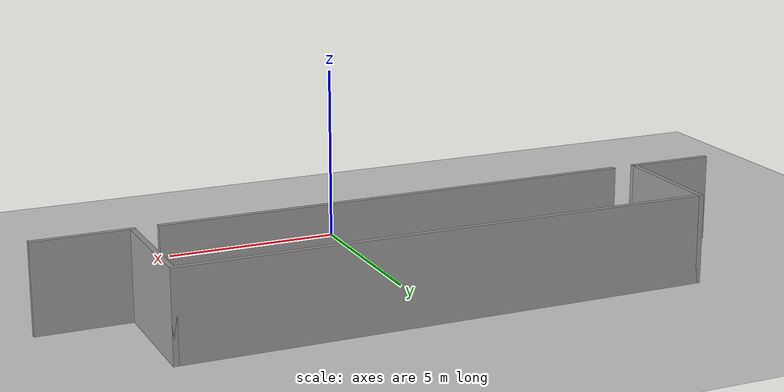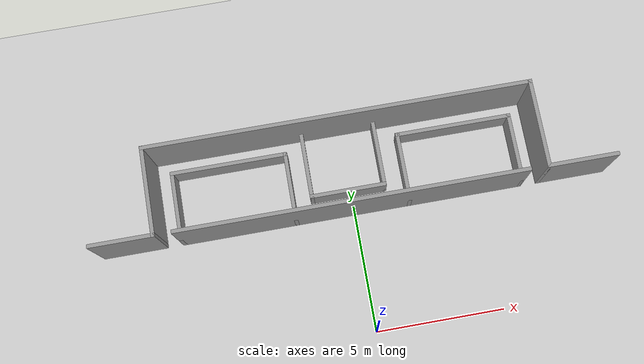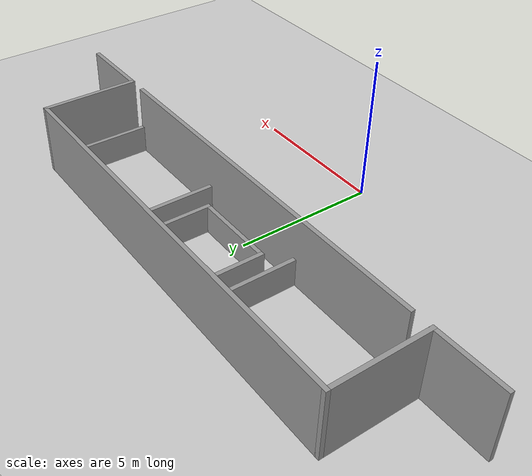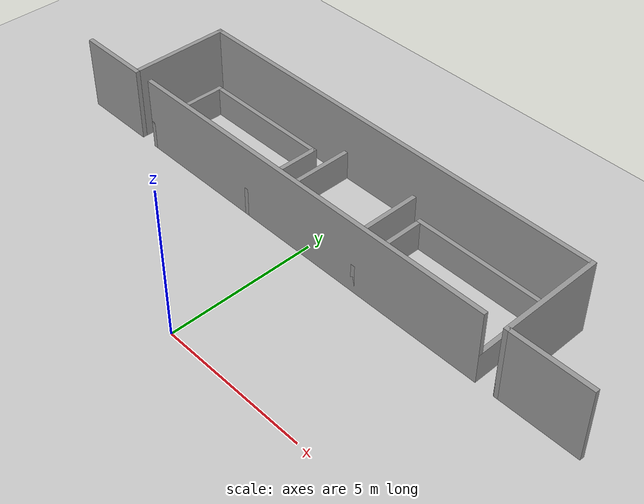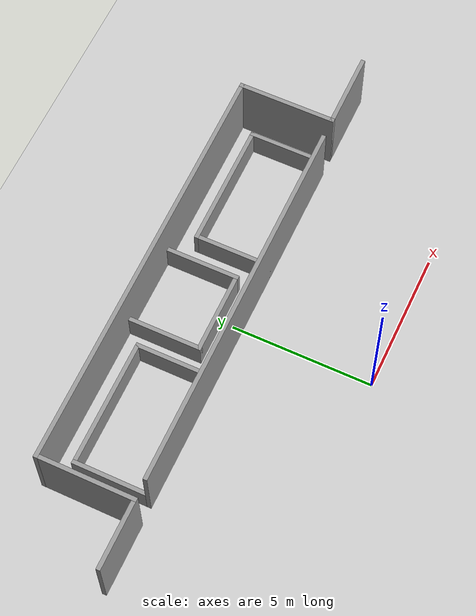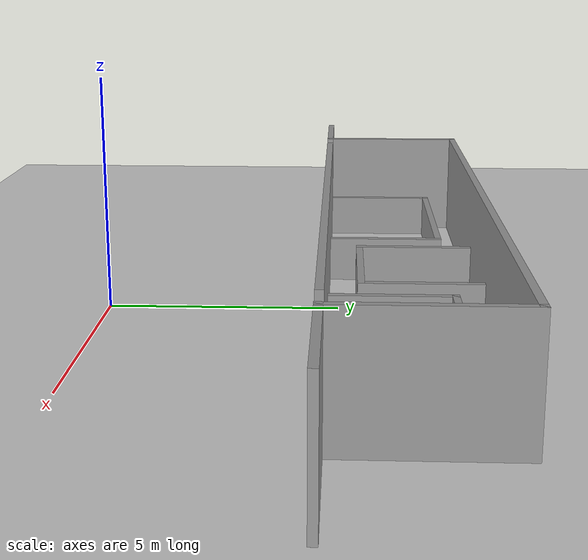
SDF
<sdf version="1.7">
 <world name="default">
  <light name="sun" type="directional">
   <pose>0 0 10 0 -0 0</pose>
   <diffuse>0.8 0.8 0.8 1</diffuse>
   <specular>0.2 0.2 0.2 1</specular>
   <attenuation>
    <range>1000</range>
    <constant>0.9</constant>
    <linear>0.01</linear>
    <quadratic>0.001</quadratic>
   </attenuation>
   <direction>-0.5 0.1 -0.9</direction>
   <spot><inner_angle>0</inner_angle><outer_angle>0</outer_angle><falloff>0</falloff></spot>
  </light>
  <model name="ground_plane">
   <static>1</static>
   <link name="link">
    <collision name="collision">
     <geometry><plane><normal>0 0 1</normal><size>100 100</size></plane></geometry>
     <surface><friction><ode><mu>100</mu><mu2>50</mu2></ode></friction></surface>
    </collision>
    <visual name="visual">
     <cast_shadows>0</cast_shadows>
     <geometry><plane><normal>0 0 1</normal><size>100 100</size></plane></geometry>
     <material>
      <script><uri>file://media/materials/scripts/gazebo.material</uri><name>Gazebo/Grey</name></script>
     </material>
    </visual>
   </link>
  </model>
  <gravity>0 0 -9.8</gravity>
  <magnetic_field>6e-06 2.3e-05 -4.2e-05</magnetic_field>
  <atmosphere type="adiabatic"/>
  <physics type="ode">
   <max_step_size>0.001</max_step_size>
   <real_time_factor>1</real_time_factor>
   <real_time_update_rate>1000</real_time_update_rate>
  </physics>
  <scene><ambient>0.4 0.4 0.4 1</ambient><background>0.7 0.7 0.7 1</background><shadows>1</shadows></scene>
  <audio><device>default</device></audio>
  <spherical_coordinates>
   <surface_model>EARTH_WGS84</surface_model>
   <latitude_deg>0</latitude_deg>
   <longitude_deg>0</longitude_deg>
   <elevation>0</elevation>
   <heading_deg>0</heading_deg>
  </spherical_coordinates>
  <model name="test_room">
   <pose>0.05 4.074 0 0 -0 0</pose>
   <link name="Wall_101">
    <collision name="Wall_101_Collision">
     <geometry><box><size>2.75 0.15 1</size></box></geometry>
     <pose>0 0 0.5 0 -0 0</pose>
    </collision>
    <visual name="Wall_101_Visual">
     <pose>0 0 0.5 0 -0 0</pose>
     <geometry><box><size>2.75 0.15 1</size></box></geometry>
     <material>
      <script><uri>file://media/materials/scripts/gazebo.material</uri><name>Gazebo/Grey</name></script>
      <ambient>1 1 1 1</ambient>
     </material>
     <meta><layer>0</layer></meta>
    </visual>
    <pose>-2.35 1.949 0 0 -0 -1.5708</pose>
   </link>
   <link name="Wall_103">
    <collision name="Wall_103_Collision">
     <geometry><box><size>3 0.15 1</size></box></geometry>
     <pose>0 0 0.5 0 -0 0</pose>
    </collision>
    <visual name="Wall_103_Visual">
     <pose>0 0 0.5 0 -0 0</pose>
     <geometry><box><size>3 0.15 1</size></box></geometry>
     <material>
      <script><uri>file://media/materials/scripts/gazebo.material</uri><name>Gazebo/Grey</name></script>
      <ambient>1 1 1 1</ambient>
     </material>
     <meta><layer>0</layer></meta>
    </visual>
    <pose>-0.18 1.395 0 0 -0 0</pose>
   </link>
   <link name="Wall_104">
    <collision name="Wall_104_Collision">
     <geometry><box><size>2.75 0.15 1</size></box></geometry>
     <pose>0 0 0.5 0 -0 0</pose>
    </collision>
    <visual name="Wall_104_Visual">
     <pose>0 0 0.5 0 -0 0</pose>
     <geometry><box><size>2.75 0.15 1</size></box></geometry>
     <material>
      <script><uri>file://media/materials/scripts/gazebo.material</uri><name>Gazebo/Grey</name></script>
      <ambient>1 1 1 1</ambient>
     </material>
     <meta><layer>0</layer></meta>
    </visual>
    <pose>1.245 2.695 0 0 -0 1.5708</pose>
   </link>
   <link name="Wall_106">
    <collision name="Wall_106_Collision">
     <geometry><box><size>2.75 0.15 1</size></box></geometry>
     <pose>0 0 0.5 0 -0 0</pose>
    </collision>
    <visual name="Wall_106_Visual">
     <pose>0 0 0.5 0 -0 0</pose>
     <geometry><box><size>2.75 0.15 1</size></box></geometry>
     <material>
      <script><uri>file://media/materials/scripts/gazebo.material</uri><name>Gazebo/Grey</name></script>
      <ambient>1 1 1 1</ambient>
     </material>
     <meta><layer>0</layer></meta>
    </visual>
    <pose>6.55 1.949 0 0 -0 1.5708</pose>
   </link>
   <link name="Wall_111">
    <collision name="Wall_111_Collision">
     <geometry><box><size>4.6 0.15 1</size></box></geometry>
     <pose>0 0 0.5 0 -0 0</pose>
    </collision>
    <visual name="Wall_111_Visual">
     <pose>0 0 0.5 0 -0 0</pose>
     <geometry><box><size>4.6 0.15 1</size></box></geometry>
     <material>
      <script><uri>file://media/materials/scripts/gazebo.material</uri><name>Gazebo/Grey</name></script>
      <ambient>1 1 1 1</ambient>
     </material>
     <meta><layer>0</layer></meta>
    </visual>
    <pose>4.325 3.249 0 0 -0 3.14159</pose>
   </link>
   <link name="Wall_113">
    <collision name="Wall_113_Collision">
     <geometry><box><size>2.75 0.15 1</size></box></geometry>
     <pose>0 0 0.5 0 -0 0</pose>
    </collision>
    <visual name="Wall_113_Visual">
     <pose>0 0 0.5 0 -0 0</pose>
     <geometry><box><size>2.75 0.15 1</size></box></geometry>
     <material>
      <script><uri>file://media/materials/scripts/gazebo.material</uri><name>Gazebo/Grey</name></script>
      <ambient>1 1 1 1</ambient>
     </material>
     <meta><layer>0</layer></meta>
    </visual>
    <pose>2.1 1.949 0 0 -0 -1.5708</pose>
   </link>
   <link name="Wall_48">
    <collision name="Wall_48_Collision">
     <geometry><box><size>15 0.15 2.5</size></box></geometry>
     <pose>0 0 1.25 0 -0 0</pose>
    </collision>
    <visual name="Wall_48_Visual">
     <pose>0 0 1.25 0 -0 0</pose>
     <geometry><box><size>15 0.15 2.5</size></box></geometry>
     <material>
      <script><uri>file://media/materials/scripts/gazebo.material</uri><name>Gazebo/Grey</name></script>
      <ambient>1 1 1 1</ambient>
     </material>
     <meta><layer>0</layer></meta>
    </visual>
    <pose>-0.125 3.999 0 0 -0 0</pose>
   </link>
   <link name="Wall_55">
    <collision name="Wall_55_Collision">
     <geometry><box><size>3.5 0.15 2.5</size></box></geometry>
     <pose>0 0 1.25 0 -0 0</pose>
    </collision>
    <visual name="Wall_55_Visual">
     <pose>0 0 1.25 0 -0 0</pose>
     <geometry><box><size>3.5 0.15 2.5</size></box></geometry>
     <material>
      <script><uri>file://media/materials/scripts/gazebo.material</uri><name>Gazebo/Grey</name></script>
      <ambient>1 1 1 1</ambient>
     </material>
     <meta><layer>0</layer></meta>
    </visual>
    <pose>-7.55 2.324 0 0 -0 -1.5708</pose>
   </link>
   <link name="Wall_56">
    <collision name="Wall_56_Collision">
     <geometry><box><size>2.5 0.15 2.5</size></box></geometry>
     <pose>0 0 1.25 0 -0 0</pose>
    </collision>
    <visual name="Wall_56_Visual">
     <pose>0 0 1.25 0 -0 0</pose>
     <geometry><box><size>2.5 0.15 2.5</size></box></geometry>
     <material>
      <script><uri>file://media/materials/scripts/gazebo.material</uri><name>Gazebo/Grey</name></script>
      <ambient>1 1 1 1</ambient>
     </material>
     <meta><layer>0</layer></meta>
    </visual>
    <pose>-8.725 0.649 0 0 -0 3.14159</pose>
   </link>
   <link name="Wall_58">
    <collision name="Wall_58_Collision">
     <geometry><box><size>3.5 0.15 2.5</size></box></geometry>
     <pose>0 0 1.25 0 -0 0</pose>
    </collision>
    <visual name="Wall_58_Visual">
     <pose>0 0 1.25 0 -0 0</pose>
     <geometry><box><size>3.5 0.15 2.5</size></box></geometry>
     <material>
      <script><uri>file://media/materials/scripts/gazebo.material</uri><name>Gazebo/Grey</name></script>
      <ambient>1 1 1 1</ambient>
     </material>
     <meta><layer>0</layer></meta>
    </visual>
    <pose>7.3 2.324 0 0 -0 -1.5708</pose>
   </link>
   <link name="Wall_59">
    <collision name="Wall_59_Collision">
     <geometry><box><size>2.75 0.15 2.5</size></box></geometry>
     <pose>0 0 1.25 0 -0 0</pose>
    </collision>
    <visual name="Wall_59_Visual">
     <pose>0 0 1.25 0 -0 0</pose>
     <geometry><box><size>2.75 0.15 2.5</size></box></geometry>
     <material>
      <script><uri>file://media/materials/scripts/gazebo.material</uri><name>Gazebo/Grey</name></script>
      <ambient>1 1 1 1</ambient>
     </material>
     <meta><layer>0</layer></meta>
    </visual>
    <pose>8.6 0.649 0 0 -0 0</pose>
   </link>
   <link name="Wall_67">
    <collision name="Wall_67_Collision">
     <geometry><box><size>13.5 0.15 2.5</size></box></geometry>
     <pose>0 0 1.25 0 -0 0</pose>
    </collision>
    <visual name="Wall_67_Visual">
     <pose>0 0 1.25 0 -0 0</pose>
     <geometry><box><size>13.5 0.15 2.5</size></box></geometry>
     <material>
      <script><uri>file://media/materials/scripts/gazebo.material</uri><name>Gazebo/Grey</name></script>
      <ambient>1 1 1 1</ambient>
     </material>
     <meta><layer>0</layer></meta>
    </visual>
    <pose>-0.125 0.649 0 0 -0 0</pose>
   </link>
   <link name="Wall_85">
    <collision name="Wall_85_Collision">
     <geometry><box><size>2.75 0.15 1</size></box></geometry>
     <pose>0 0 0.5 0 -0 0</pose>
    </collision>
    <visual name="Wall_85_Visual">
     <pose>0 0 0.5 0 -0 0</pose>
     <geometry><box><size>2.75 0.15 1</size></box></geometry>
     <material>
      <script><uri>file://media/materials/scripts/gazebo.material</uri><name>Gazebo/Grey</name></script>
      <ambient>1 1 1 1</ambient>
     </material>
     <meta><layer>0</layer></meta>
    </visual>
    <pose>-6.8 1.949 0 0 -0 1.5708</pose>
   </link>
   <link name="Wall_93">
    <collision name="Wall_93_Collision">
     <geometry><box><size>2.75 0.15 1</size></box></geometry>
     <pose>0 0 0.5 0 -0 0</pose>
    </collision>
    <visual name="Wall_93_Visual">
     <pose>0 0 0.5 0 -0 0</pose>
     <geometry><box><size>2.75 0.15 1</size></box></geometry>
     <material>
      <script><uri>file://media/materials/scripts/gazebo.material</uri><name>Gazebo/Grey</name></script>
      <ambient>1 1 1 1</ambient>
     </material>
     <meta><layer>0</layer></meta>
    </visual>
    <pose>-1.605 2.695 0 0 -0 -1.5708</pose>
   </link>
   <link name="Wall_97">
    <collision name="Wall_97_Collision">
     <geometry><box><size>4.6 0.15 1</size></box></geometry>
     <pose>0 0 0.5 0 -0 0</pose>
    </collision>
    <visual name="Wall_97_Visual">
     <pose>0 0 0.5 0 -0 0</pose>
     <geometry><box><size>4.6 0.15 1</size></box></geometry>
     <material>
      <script><uri>file://media/materials/scripts/gazebo.material</uri><name>Gazebo/Grey</name></script>
      <ambient>1 1 1 1</ambient>
     </material>
     <meta><layer>0</layer></meta>
    </visual>
    <pose>-4.575 3.249 0 0 -0 0</pose>
   </link>
   <static>1</static>
  </model>
 </world>
</sdf>
